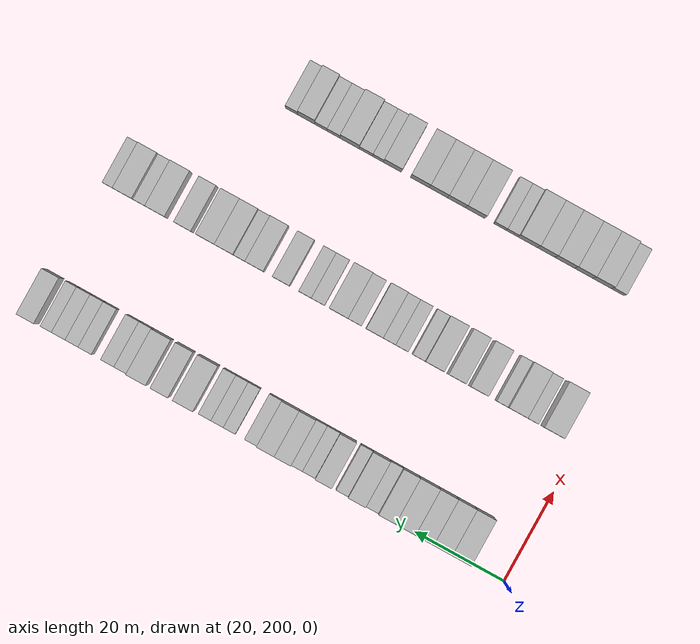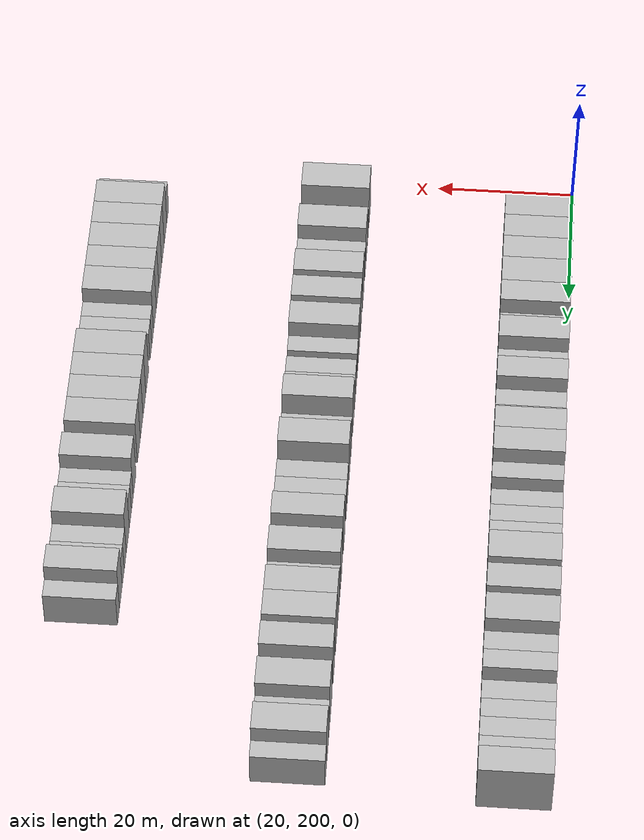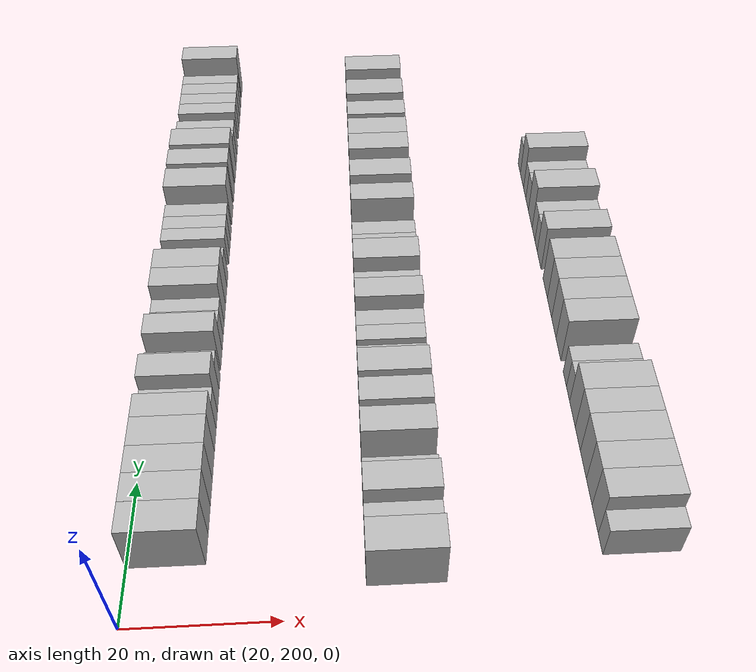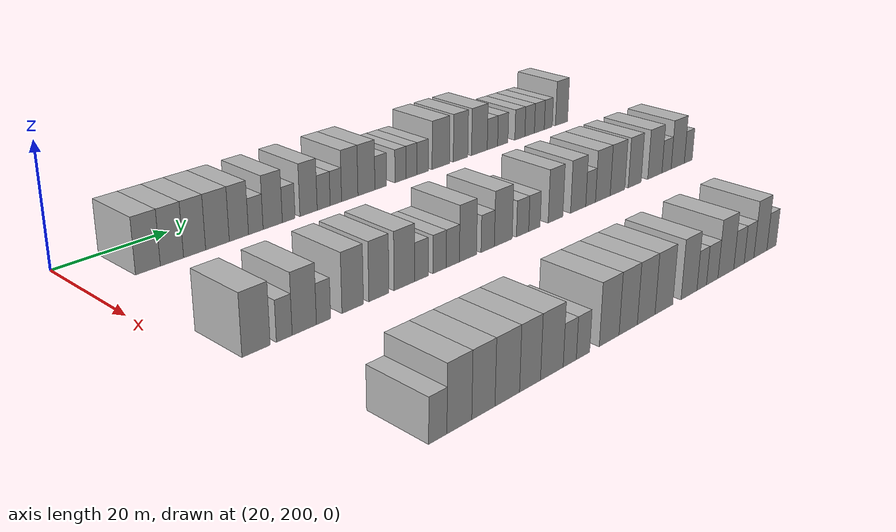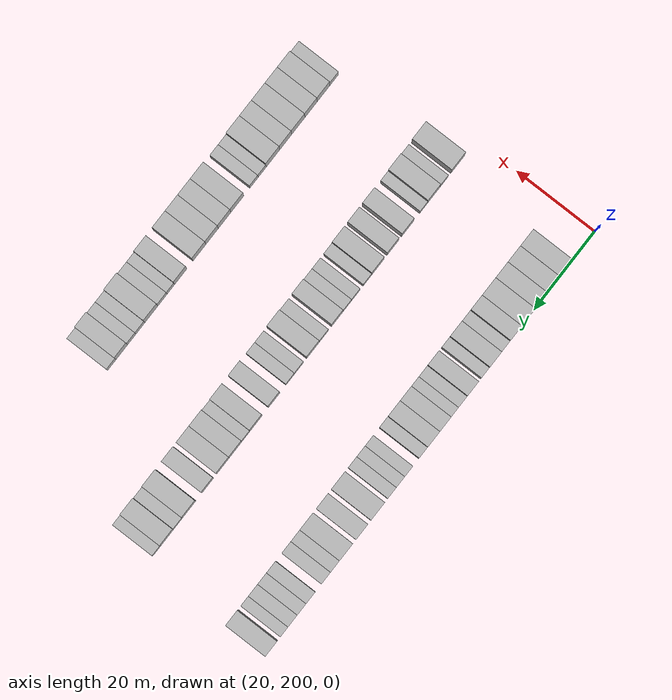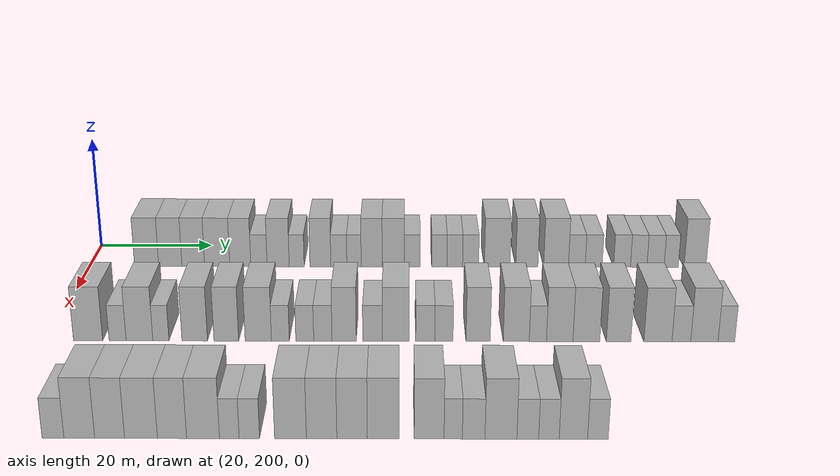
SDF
<sdf version="1.6">
 <world name="default">
  <model name="building_141">
   <static>1</static>
   <pose>25.0000 209.9614 0 0.000000 0.000000 0.000000</pose>
   <link name="link">
    <pose>0 0 4.50 0 0 0</pose>
    <collision name="collision"><geometry><box><size>10.0000 4.2071 9.0000</size></box></geometry></collision>
    <visual name="visual">
     <cast_shadows>0</cast_shadows>
     <geometry><box><size>10.0000 4.2071 9.0000</size></box></geometry>
     <material>
      <script>
       <uri>model://HANNAS_wall/materials/scripts</uri>
       <uri>model://HANNAS_wall/materials/textures</uri>
       <name>vrc/HANNAS_wall</name>
      </script>
     </material>
    </visual>
   </link>
  </model>
  <model name="building_142">
   <static>1</static>
   <pose>25.0000 214.0919 0 0.000000 0.000000 0.000000</pose>
   <link name="link">
    <pose>0 0 4.50 0 0 0</pose>
    <collision name="collision"><geometry><box><size>10.0000 4.0538 9.0000</size></box></geometry></collision>
    <visual name="visual">
     <cast_shadows>0</cast_shadows>
     <geometry><box><size>10.0000 4.0538 9.0000</size></box></geometry>
     <material>
      <script>
       <uri>model://HANNAS_wall/materials/scripts</uri>
       <uri>model://HANNAS_wall/materials/textures</uri>
       <name>vrc/HANNAS_wall</name>
      </script>
     </material>
    </visual>
   </link>
  </model>
  <model name="building_143">
   <static>1</static>
   <pose>25.0000 218.1014 0 0.000000 0.000000 0.000000</pose>
   <link name="link">
    <pose>0 0 4.50 0 0 0</pose>
    <collision name="collision"><geometry><box><size>10.0000 3.9653 9.0000</size></box></geometry></collision>
    <visual name="visual">
     <cast_shadows>0</cast_shadows>
     <geometry><box><size>10.0000 3.9653 9.0000</size></box></geometry>
     <material>
      <script>
       <uri>model://HANNAS_wall/materials/scripts</uri>
       <uri>model://HANNAS_wall/materials/textures</uri>
       <name>vrc/HANNAS_wall</name>
      </script>
     </material>
    </visual>
   </link>
  </model>
  <model name="building_144">
   <static>1</static>
   <pose>25.0000 222.2777 0 0.000000 0.000000 0.000000</pose>
   <link name="link">
    <pose>0 0 4.50 0 0 0</pose>
    <collision name="collision"><geometry><box><size>10.0000 4.3873 9.0000</size></box></geometry></collision>
    <visual name="visual">
     <cast_shadows>0</cast_shadows>
     <geometry><box><size>10.0000 4.3873 9.0000</size></box></geometry>
     <material>
      <script>
       <uri>model://HANNAS_wall/materials/scripts</uri>
       <uri>model://HANNAS_wall/materials/textures</uri>
       <name>vrc/HANNAS_wall</name>
      </script>
     </material>
    </visual>
   </link>
  </model>
  <model name="building_145">
   <static>1</static>
   <pose>25.0000 226.3055 0 0.000000 0.000000 0.000000</pose>
   <link name="link">
    <pose>0 0 4.50 0 0 0</pose>
    <collision name="collision"><geometry><box><size>10.0000 3.6681 9.0000</size></box></geometry></collision>
    <visual name="visual">
     <cast_shadows>0</cast_shadows>
     <geometry><box><size>10.0000 3.6681 9.0000</size></box></geometry>
     <material>
      <script>
       <uri>model://HANNAS_wall/materials/scripts</uri>
       <uri>model://HANNAS_wall/materials/textures</uri>
       <name>vrc/HANNAS_wall</name>
      </script>
     </material>
    </visual>
   </link>
  </model>
  <model name="building_146">
   <static>1</static>
   <pose>25.0000 229.5620 0 0.000000 0.000000 0.000000</pose>
   <link name="link">
    <pose>0 0 3.00 0 0 0</pose>
    <collision name="collision"><geometry><box><size>10.0000 2.8450 6.0000</size></box></geometry></collision>
    <visual name="visual">
     <cast_shadows>0</cast_shadows>
     <geometry><box><size>10.0000 2.8450 6.0000</size></box></geometry>
     <material>
      <script>
       <uri>model://HANNAS_wall/materials/scripts</uri>
       <uri>model://HANNAS_wall/materials/textures</uri>
       <name>vrc/HANNAS_wall</name>
      </script>
     </material>
    </visual>
   </link>
  </model>
  <model name="building_147">
   <static>1</static>
   <pose>25.0000 232.9088 0 0.000000 0.000000 0.000000</pose>
   <link name="link">
    <pose>0 0 4.50 0 0 0</pose>
    <collision name="collision"><geometry><box><size>10.0000 3.8485 9.0000</size></box></geometry></collision>
    <visual name="visual">
     <cast_shadows>0</cast_shadows>
     <geometry><box><size>10.0000 3.8485 9.0000</size></box></geometry>
     <material>
      <script>
       <uri>model://HANNAS_wall/materials/scripts</uri>
       <uri>model://HANNAS_wall/materials/textures</uri>
       <name>vrc/HANNAS_wall</name>
      </script>
     </material>
    </visual>
   </link>
  </model>
  <model name="building_148">
   <static>1</static>
   <pose>25.0000 236.1362 0 0.000000 0.000000 0.000000</pose>
   <link name="link">
    <pose>0 0 3.00 0 0 0</pose>
    <collision name="collision"><geometry><box><size>10.0000 2.6063 6.0000</size></box></geometry></collision>
    <visual name="visual">
     <cast_shadows>0</cast_shadows>
     <geometry><box><size>10.0000 2.6063 6.0000</size></box></geometry>
     <material>
      <script>
       <uri>model://HANNAS_wall/materials/scripts</uri>
       <uri>model://HANNAS_wall/materials/textures</uri>
       <name>vrc/HANNAS_wall</name>
      </script>
     </material>
    </visual>
   </link>
  </model>
  <model name="building_149">
   <static>1</static>
   <pose>25.0000 240.2590 0 0.000000 0.000000 0.000000</pose>
   <link name="link">
    <pose>0 0 4.50 0 0 0</pose>
    <collision name="collision"><geometry><box><size>10.0000 3.6392 9.0000</size></box></geometry></collision>
    <visual name="visual">
     <cast_shadows>0</cast_shadows>
     <geometry><box><size>10.0000 3.6392 9.0000</size></box></geometry>
     <material>
      <script>
       <uri>model://HANNAS_wall/materials/scripts</uri>
       <uri>model://HANNAS_wall/materials/textures</uri>
       <name>vrc/HANNAS_wall</name>
      </script>
     </material>
    </visual>
   </link>
  </model>
  <model name="building_150">
   <static>1</static>
   <pose>25.0000 243.4770 0 0.000000 0.000000 0.000000</pose>
   <link name="link">
    <pose>0 0 3.00 0 0 0</pose>
    <collision name="collision"><geometry><box><size>10.0000 2.7969 6.0000</size></box></geometry></collision>
    <visual name="visual">
     <cast_shadows>0</cast_shadows>
     <geometry><box><size>10.0000 2.7969 6.0000</size></box></geometry>
     <material>
      <script>
       <uri>model://HANNAS_wall/materials/scripts</uri>
       <uri>model://HANNAS_wall/materials/textures</uri>
       <name>vrc/HANNAS_wall</name>
      </script>
     </material>
    </visual>
   </link>
  </model>
  <model name="building_151">
   <static>1</static>
   <pose>25.0000 246.1226 0 0.000000 0.000000 0.000000</pose>
   <link name="link">
    <pose>0 0 3.00 0 0 0</pose>
    <collision name="collision"><geometry><box><size>10.0000 2.4941 6.0000</size></box></geometry></collision>
    <visual name="visual">
     <cast_shadows>0</cast_shadows>
     <geometry><box><size>10.0000 2.4941 6.0000</size></box></geometry>
     <material>
      <script>
       <uri>model://HANNAS_wall/materials/scripts</uri>
       <uri>model://HANNAS_wall/materials/textures</uri>
       <name>vrc/HANNAS_wall</name>
      </script>
     </material>
    </visual>
   </link>
  </model>
  <model name="building_152">
   <static>1</static>
   <pose>25.0000 249.2016 0 0.000000 0.000000 0.000000</pose>
   <link name="link">
    <pose>0 0 4.50 0 0 0</pose>
    <collision name="collision"><geometry><box><size>10.0000 3.6640 9.0000</size></box></geometry></collision>
    <visual name="visual">
     <cast_shadows>0</cast_shadows>
     <geometry><box><size>10.0000 3.6640 9.0000</size></box></geometry>
     <material>
      <script>
       <uri>model://HANNAS_wall/materials/scripts</uri>
       <uri>model://HANNAS_wall/materials/textures</uri>
       <name>vrc/HANNAS_wall</name>
      </script>
     </material>
    </visual>
   </link>
  </model>
  <model name="building_153">
   <static>1</static>
   <pose>25.0000 252.9788 0 0.000000 0.000000 0.000000</pose>
   <link name="link">
    <pose>0 0 4.50 0 0 0</pose>
    <collision name="collision"><geometry><box><size>10.0000 3.8904 9.0000</size></box></geometry></collision>
    <visual name="visual">
     <cast_shadows>0</cast_shadows>
     <geometry><box><size>10.0000 3.8904 9.0000</size></box></geometry>
     <material>
      <script>
       <uri>model://HANNAS_wall/materials/scripts</uri>
       <uri>model://HANNAS_wall/materials/textures</uri>
       <name>vrc/HANNAS_wall</name>
      </script>
     </material>
    </visual>
   </link>
  </model>
  <model name="building_154">
   <static>1</static>
   <pose>25.0000 256.2912 0 0.000000 0.000000 0.000000</pose>
   <link name="link">
    <pose>0 0 3.00 0 0 0</pose>
    <collision name="collision"><geometry><box><size>10.0000 2.7344 6.0000</size></box></geometry></collision>
    <visual name="visual">
     <cast_shadows>0</cast_shadows>
     <geometry><box><size>10.0000 2.7344 6.0000</size></box></geometry>
     <material>
      <script>
       <uri>model://HANNAS_wall/materials/scripts</uri>
       <uri>model://HANNAS_wall/materials/textures</uri>
       <name>vrc/HANNAS_wall</name>
      </script>
     </material>
    </visual>
   </link>
  </model>
  <model name="building_155">
   <static>1</static>
   <pose>25.0000 260.9845 0 0.000000 0.000000 0.000000</pose>
   <link name="link">
    <pose>0 0 3.00 0 0 0</pose>
    <collision name="collision"><geometry><box><size>10.0000 2.6523 6.0000</size></box></geometry></collision>
    <visual name="visual">
     <cast_shadows>0</cast_shadows>
     <geometry><box><size>10.0000 2.6523 6.0000</size></box></geometry>
     <material>
      <script>
       <uri>model://HANNAS_wall/materials/scripts</uri>
       <uri>model://HANNAS_wall/materials/textures</uri>
       <name>vrc/HANNAS_wall</name>
      </script>
     </material>
    </visual>
   </link>
  </model>
  <model name="building_156">
   <static>1</static>
   <pose>25.0000 263.6761 0 0.000000 0.000000 0.000000</pose>
   <link name="link">
    <pose>0 0 3.00 0 0 0</pose>
    <collision name="collision"><geometry><box><size>10.0000 2.7308 6.0000</size></box></geometry></collision>
    <visual name="visual">
     <cast_shadows>0</cast_shadows>
     <geometry><box><size>10.0000 2.7308 6.0000</size></box></geometry>
     <material>
      <script>
       <uri>model://HANNAS_wall/materials/scripts</uri>
       <uri>model://HANNAS_wall/materials/textures</uri>
       <name>vrc/HANNAS_wall</name>
      </script>
     </material>
    </visual>
   </link>
  </model>
  <model name="building_157">
   <static>1</static>
   <pose>25.0000 266.4309 0 0.000000 0.000000 0.000000</pose>
   <link name="link">
    <pose>0 0 3.00 0 0 0</pose>
    <collision name="collision"><geometry><box><size>10.0000 2.7789 6.0000</size></box></geometry></collision>
    <visual name="visual">
     <cast_shadows>0</cast_shadows>
     <geometry><box><size>10.0000 2.7789 6.0000</size></box></geometry>
     <material>
      <script>
       <uri>model://HANNAS_wall/materials/scripts</uri>
       <uri>model://HANNAS_wall/materials/textures</uri>
       <name>vrc/HANNAS_wall</name>
      </script>
     </material>
    </visual>
   </link>
  </model>
  <model name="building_158">
   <static>1</static>
   <pose>25.0000 271.0563 0 0.000000 0.000000 0.000000</pose>
   <link name="link">
    <pose>0 0 4.50 0 0 0</pose>
    <collision name="collision"><geometry><box><size>10.0000 4.4718 9.0000</size></box></geometry></collision>
    <visual name="visual">
     <cast_shadows>0</cast_shadows>
     <geometry><box><size>10.0000 4.4718 9.0000</size></box></geometry>
     <material>
      <script>
       <uri>model://HANNAS_wall/materials/scripts</uri>
       <uri>model://HANNAS_wall/materials/textures</uri>
       <name>vrc/HANNAS_wall</name>
      </script>
     </material>
    </visual>
   </link>
  </model>
  <model name="building_159">
   <static>1</static>
   <pose>25.0000 276.2250 0 0.000000 0.000000 0.000000</pose>
   <link name="link">
    <pose>0 0 4.50 0 0 0</pose>
    <collision name="collision"><geometry><box><size>10.0000 3.8656 9.0000</size></box></geometry></collision>
    <visual name="visual">
     <cast_shadows>0</cast_shadows>
     <geometry><box><size>10.0000 3.8656 9.0000</size></box></geometry>
     <material>
      <script>
       <uri>model://HANNAS_wall/materials/scripts</uri>
       <uri>model://HANNAS_wall/materials/textures</uri>
       <name>vrc/HANNAS_wall</name>
      </script>
     </material>
    </visual>
   </link>
  </model>
  <model name="building_160">
   <static>1</static>
   <pose>25.0000 281.3155 0 0.000000 0.000000 0.000000</pose>
   <link name="link">
    <pose>0 0 4.50 0 0 0</pose>
    <collision name="collision"><geometry><box><size>10.0000 4.3152 9.0000</size></box></geometry></collision>
    <visual name="visual">
     <cast_shadows>0</cast_shadows>
     <geometry><box><size>10.0000 4.3152 9.0000</size></box></geometry>
     <material>
      <script>
       <uri>model://HANNAS_wall/materials/scripts</uri>
       <uri>model://HANNAS_wall/materials/textures</uri>
       <name>vrc/HANNAS_wall</name>
      </script>
     </material>
    </visual>
   </link>
  </model>
  <model name="building_161">
   <static>1</static>
   <pose>25.0000 284.9290 0 0.000000 0.000000 0.000000</pose>
   <link name="link">
    <pose>0 0 3.00 0 0 0</pose>
    <collision name="collision"><geometry><box><size>10.0000 2.9118 6.0000</size></box></geometry></collision>
    <visual name="visual">
     <cast_shadows>0</cast_shadows>
     <geometry><box><size>10.0000 2.9118 6.0000</size></box></geometry>
     <material>
      <script>
       <uri>model://HANNAS_wall/materials/scripts</uri>
       <uri>model://HANNAS_wall/materials/textures</uri>
       <name>vrc/HANNAS_wall</name>
      </script>
     </material>
    </visual>
   </link>
  </model>
  <model name="building_162">
   <static>1</static>
   <pose>25.0000 287.8571 0 0.000000 0.000000 0.000000</pose>
   <link name="link">
    <pose>0 0 3.00 0 0 0</pose>
    <collision name="collision"><geometry><box><size>10.0000 2.9444 6.0000</size></box></geometry></collision>
    <visual name="visual">
     <cast_shadows>0</cast_shadows>
     <geometry><box><size>10.0000 2.9444 6.0000</size></box></geometry>
     <material>
      <script>
       <uri>model://HANNAS_wall/materials/scripts</uri>
       <uri>model://HANNAS_wall/materials/textures</uri>
       <name>vrc/HANNAS_wall</name>
      </script>
     </material>
    </visual>
   </link>
  </model>
  <model name="building_163">
   <static>1</static>
   <pose>25.0000 292.7997 0 0.000000 0.000000 0.000000</pose>
   <link name="link">
    <pose>0 0 3.00 0 0 0</pose>
    <collision name="collision"><geometry><box><size>10.0000 2.9407 6.0000</size></box></geometry></collision>
    <visual name="visual">
     <cast_shadows>0</cast_shadows>
     <geometry><box><size>10.0000 2.9407 6.0000</size></box></geometry>
     <material>
      <script>
       <uri>model://HANNAS_wall/materials/scripts</uri>
       <uri>model://HANNAS_wall/materials/textures</uri>
       <name>vrc/HANNAS_wall</name>
      </script>
     </material>
    </visual>
   </link>
  </model>
  <model name="building_164">
   <static>1</static>
   <pose>25.0000 295.6994 0 0.000000 0.000000 0.000000</pose>
   <link name="link">
    <pose>0 0 3.00 0 0 0</pose>
    <collision name="collision"><geometry><box><size>10.0000 2.8587 6.0000</size></box></geometry></collision>
    <visual name="visual">
     <cast_shadows>0</cast_shadows>
     <geometry><box><size>10.0000 2.8587 6.0000</size></box></geometry>
     <material>
      <script>
       <uri>model://HANNAS_wall/materials/scripts</uri>
       <uri>model://HANNAS_wall/materials/textures</uri>
       <name>vrc/HANNAS_wall</name>
      </script>
     </material>
    </visual>
   </link>
  </model>
  <model name="building_165">
   <static>1</static>
   <pose>25.0000 298.6269 0 0.000000 0.000000 0.000000</pose>
   <link name="link">
    <pose>0 0 3.00 0 0 0</pose>
    <collision name="collision"><geometry><box><size>10.0000 2.9963 6.0000</size></box></geometry></collision>
    <visual name="visual">
     <cast_shadows>0</cast_shadows>
     <geometry><box><size>10.0000 2.9963 6.0000</size></box></geometry>
     <material>
      <script>
       <uri>model://HANNAS_wall/materials/scripts</uri>
       <uri>model://HANNAS_wall/materials/textures</uri>
       <name>vrc/HANNAS_wall</name>
      </script>
     </material>
    </visual>
   </link>
  </model>
  <model name="building_166">
   <static>1</static>
   <pose>25.0000 301.3585 0 0.000000 0.000000 0.000000</pose>
   <link name="link">
    <pose>0 0 3.00 0 0 0</pose>
    <collision name="collision"><geometry><box><size>10.0000 2.4670 6.0000</size></box></geometry></collision>
    <visual name="visual">
     <cast_shadows>0</cast_shadows>
     <geometry><box><size>10.0000 2.4670 6.0000</size></box></geometry>
     <material>
      <script>
       <uri>model://HANNAS_wall/materials/scripts</uri>
       <uri>model://HANNAS_wall/materials/textures</uri>
       <name>vrc/HANNAS_wall</name>
      </script>
     </material>
    </visual>
   </link>
  </model>
  <model name="building_167">
   <static>1</static>
   <pose>25.0000 305.5046 0 0.000000 0.000000 0.000000</pose>
   <link name="link">
    <pose>0 0 4.50 0 0 0</pose>
    <collision name="collision"><geometry><box><size>10.0000 3.8250 9.0000</size></box></geometry></collision>
    <visual name="visual">
     <cast_shadows>0</cast_shadows>
     <geometry><box><size>10.0000 3.8250 9.0000</size></box></geometry>
     <material>
      <script>
       <uri>model://HANNAS_wall/materials/scripts</uri>
       <uri>model://HANNAS_wall/materials/textures</uri>
       <name>vrc/HANNAS_wall</name>
      </script>
     </material>
    </visual>
   </link>
  </model>
  <model name="building_372">
   <static>1</static>
   <pose>55.0000 206.2526 0 0.000000 0.000000 0.000000</pose>
   <link name="link">
    <pose>0 0 4.50 0 0 0</pose>
    <collision name="collision"><geometry><box><size>10.0000 4.4772 9.0000</size></box></geometry></collision>
    <visual name="visual">
     <cast_shadows>0</cast_shadows>
     <geometry><box><size>10.0000 4.4772 9.0000</size></box></geometry>
     <material>
      <script>
       <uri>model://HANNAS_wall/materials/scripts</uri>
       <uri>model://HANNAS_wall/materials/textures</uri>
       <name>vrc/HANNAS_wall</name>
      </script>
     </material>
    </visual>
   </link>
  </model>
  <model name="building_373">
   <static>1</static>
   <pose>55.0000 210.7950 0 0.000000 0.000000 0.000000</pose>
   <link name="link">
    <pose>0 0 3.00 0 0 0</pose>
    <collision name="collision"><geometry><box><size>10.0000 2.6076 6.0000</size></box></geometry></collision>
    <visual name="visual">
     <cast_shadows>0</cast_shadows>
     <geometry><box><size>10.0000 2.6076 6.0000</size></box></geometry>
     <material>
      <script>
       <uri>model://HANNAS_wall/materials/scripts</uri>
       <uri>model://HANNAS_wall/materials/textures</uri>
       <name>vrc/HANNAS_wall</name>
      </script>
     </material>
    </visual>
   </link>
  </model>
  <model name="building_374">
   <static>1</static>
   <pose>55.0000 214.1557 0 0.000000 0.000000 0.000000</pose>
   <link name="link">
    <pose>0 0 4.50 0 0 0</pose>
    <collision name="collision"><geometry><box><size>10.0000 4.1138 9.0000</size></box></geometry></collision>
    <visual name="visual">
     <cast_shadows>0</cast_shadows>
     <geometry><box><size>10.0000 4.1138 9.0000</size></box></geometry>
     <material>
      <script>
       <uri>model://HANNAS_wall/materials/scripts</uri>
       <uri>model://HANNAS_wall/materials/textures</uri>
       <name>vrc/HANNAS_wall</name>
      </script>
     </material>
    </visual>
   </link>
  </model>
  <model name="building_375">
   <static>1</static>
   <pose>55.0000 217.4530 0 0.000000 0.000000 0.000000</pose>
   <link name="link">
    <pose>0 0 3.00 0 0 0</pose>
    <collision name="collision"><geometry><box><size>10.0000 2.4809 6.0000</size></box></geometry></collision>
    <visual name="visual">
     <cast_shadows>0</cast_shadows>
     <geometry><box><size>10.0000 2.4809 6.0000</size></box></geometry>
     <material>
      <script>
       <uri>model://HANNAS_wall/materials/scripts</uri>
       <uri>model://HANNAS_wall/materials/textures</uri>
       <name>vrc/HANNAS_wall</name>
      </script>
     </material>
    </visual>
   </link>
  </model>
  <model name="building_376">
   <static>1</static>
   <pose>55.0000 222.6532 0 0.000000 0.000000 0.000000</pose>
   <link name="link">
    <pose>0 0 4.50 0 0 0</pose>
    <collision name="collision"><geometry><box><size>10.0000 3.9195 9.0000</size></box></geometry></collision>
    <visual name="visual">
     <cast_shadows>0</cast_shadows>
     <geometry><box><size>10.0000 3.9195 9.0000</size></box></geometry>
     <material>
      <script>
       <uri>model://HANNAS_wall/materials/scripts</uri>
       <uri>model://HANNAS_wall/materials/textures</uri>
       <name>vrc/HANNAS_wall</name>
      </script>
     </material>
    </visual>
   </link>
  </model>
  <model name="building_377">
   <static>1</static>
   <pose>55.0000 227.5112 0 0.000000 0.000000 0.000000</pose>
   <link name="link">
    <pose>0 0 4.50 0 0 0</pose>
    <collision name="collision"><geometry><box><size>10.0000 3.7964 9.0000</size></box></geometry></collision>
    <visual name="visual">
     <cast_shadows>0</cast_shadows>
     <geometry><box><size>10.0000 3.7964 9.0000</size></box></geometry>
     <material>
      <script>
       <uri>model://HANNAS_wall/materials/scripts</uri>
       <uri>model://HANNAS_wall/materials/textures</uri>
       <name>vrc/HANNAS_wall</name>
      </script>
     </material>
    </visual>
   </link>
  </model>
  <model name="building_378">
   <static>1</static>
   <pose>55.0000 232.4296 0 0.000000 0.000000 0.000000</pose>
   <link name="link">
    <pose>0 0 4.50 0 0 0</pose>
    <collision name="collision"><geometry><box><size>10.0000 4.0404 9.0000</size></box></geometry></collision>
    <visual name="visual">
     <cast_shadows>0</cast_shadows>
     <geometry><box><size>10.0000 4.0404 9.0000</size></box></geometry>
     <material>
      <script>
       <uri>model://HANNAS_wall/materials/scripts</uri>
       <uri>model://HANNAS_wall/materials/textures</uri>
       <name>vrc/HANNAS_wall</name>
      </script>
     </material>
    </visual>
   </link>
  </model>
  <model name="building_379">
   <static>1</static>
   <pose>55.0000 235.8215 0 0.000000 0.000000 0.000000</pose>
   <link name="link">
    <pose>0 0 3.00 0 0 0</pose>
    <collision name="collision"><geometry><box><size>10.0000 2.7434 6.0000</size></box></geometry></collision>
    <visual name="visual">
     <cast_shadows>0</cast_shadows>
     <geometry><box><size>10.0000 2.7434 6.0000</size></box></geometry>
     <material>
      <script>
       <uri>model://HANNAS_wall/materials/scripts</uri>
       <uri>model://HANNAS_wall/materials/textures</uri>
       <name>vrc/HANNAS_wall</name>
      </script>
     </material>
    </visual>
   </link>
  </model>
  <model name="building_380">
   <static>1</static>
   <pose>55.0000 239.5719 0 0.000000 0.000000 0.000000</pose>
   <link name="link">
    <pose>0 0 3.00 0 0 0</pose>
    <collision name="collision"><geometry><box><size>10.0000 2.7574 6.0000</size></box></geometry></collision>
    <visual name="visual">
     <cast_shadows>0</cast_shadows>
     <geometry><box><size>10.0000 2.7574 6.0000</size></box></geometry>
     <material>
      <script>
       <uri>model://HANNAS_wall/materials/scripts</uri>
       <uri>model://HANNAS_wall/materials/textures</uri>
       <name>vrc/HANNAS_wall</name>
      </script>
     </material>
    </visual>
   </link>
  </model>
  <model name="building_381">
   <static>1</static>
   <pose>55.0000 242.3495 0 0.000000 0.000000 0.000000</pose>
   <link name="link">
    <pose>0 0 3.00 0 0 0</pose>
    <collision name="collision"><geometry><box><size>10.0000 2.7978 6.0000</size></box></geometry></collision>
    <visual name="visual">
     <cast_shadows>0</cast_shadows>
     <geometry><box><size>10.0000 2.7978 6.0000</size></box></geometry>
     <material>
      <script>
       <uri>model://HANNAS_wall/materials/scripts</uri>
       <uri>model://HANNAS_wall/materials/textures</uri>
       <name>vrc/HANNAS_wall</name>
      </script>
     </material>
    </visual>
   </link>
  </model>
  <model name="building_382">
   <static>1</static>
   <pose>55.0000 245.6145 0 0.000000 0.000000 0.000000</pose>
   <link name="link">
    <pose>0 0 4.50 0 0 0</pose>
    <collision name="collision"><geometry><box><size>10.0000 3.7324 9.0000</size></box></geometry></collision>
    <visual name="visual">
     <cast_shadows>0</cast_shadows>
     <geometry><box><size>10.0000 3.7324 9.0000</size></box></geometry>
     <material>
      <script>
       <uri>model://HANNAS_wall/materials/scripts</uri>
       <uri>model://HANNAS_wall/materials/textures</uri>
       <name>vrc/HANNAS_wall</name>
      </script>
     </material>
    </visual>
   </link>
  </model>
  <model name="building_383">
   <static>1</static>
   <pose>55.0000 249.9787 0 0.000000 0.000000 0.000000</pose>
   <link name="link">
    <pose>0 0 3.00 0 0 0</pose>
    <collision name="collision"><geometry><box><size>10.0000 2.9959 6.0000</size></box></geometry></collision>
    <visual name="visual">
     <cast_shadows>0</cast_shadows>
     <geometry><box><size>10.0000 2.9959 6.0000</size></box></geometry>
     <material>
      <script>
       <uri>model://HANNAS_wall/materials/scripts</uri>
       <uri>model://HANNAS_wall/materials/textures</uri>
       <name>vrc/HANNAS_wall</name>
      </script>
     </material>
    </visual>
   </link>
  </model>
  <model name="building_384">
   <static>1</static>
   <pose>55.0000 253.5428 0 0.000000 0.000000 0.000000</pose>
   <link name="link">
    <pose>0 0 4.50 0 0 0</pose>
    <collision name="collision"><geometry><box><size>10.0000 4.1324 9.0000</size></box></geometry></collision>
    <visual name="visual">
     <cast_shadows>0</cast_shadows>
     <geometry><box><size>10.0000 4.1324 9.0000</size></box></geometry>
     <material>
      <script>
       <uri>model://HANNAS_wall/materials/scripts</uri>
       <uri>model://HANNAS_wall/materials/textures</uri>
       <name>vrc/HANNAS_wall</name>
      </script>
     </material>
    </visual>
   </link>
  </model>
  <model name="building_385">
   <static>1</static>
   <pose>55.0000 258.0759 0 0.000000 0.000000 0.000000</pose>
   <link name="link">
    <pose>0 0 3.00 0 0 0</pose>
    <collision name="collision"><geometry><box><size>10.0000 2.9338 6.0000</size></box></geometry></collision>
    <visual name="visual">
     <cast_shadows>0</cast_shadows>
     <geometry><box><size>10.0000 2.9338 6.0000</size></box></geometry>
     <material>
      <script>
       <uri>model://HANNAS_wall/materials/scripts</uri>
       <uri>model://HANNAS_wall/materials/textures</uri>
       <name>vrc/HANNAS_wall</name>
      </script>
     </material>
    </visual>
   </link>
  </model>
  <model name="building_386">
   <static>1</static>
   <pose>55.0000 260.9384 0 0.000000 0.000000 0.000000</pose>
   <link name="link">
    <pose>0 0 3.00 0 0 0</pose>
    <collision name="collision"><geometry><box><size>10.0000 2.7911 6.0000</size></box></geometry></collision>
    <visual name="visual">
     <cast_shadows>0</cast_shadows>
     <geometry><box><size>10.0000 2.7911 6.0000</size></box></geometry>
     <material>
      <script>
       <uri>model://HANNAS_wall/materials/scripts</uri>
       <uri>model://HANNAS_wall/materials/textures</uri>
       <name>vrc/HANNAS_wall</name>
      </script>
     </material>
    </visual>
   </link>
  </model>
  <model name="building_387">
   <static>1</static>
   <pose>55.0000 266.1903 0 0.000000 0.000000 0.000000</pose>
   <link name="link">
    <pose>0 0 4.50 0 0 0</pose>
    <collision name="collision"><geometry><box><size>10.0000 3.7127 9.0000</size></box></geometry></collision>
    <visual name="visual">
     <cast_shadows>0</cast_shadows>
     <geometry><box><size>10.0000 3.7127 9.0000</size></box></geometry>
     <material>
      <script>
       <uri>model://HANNAS_wall/materials/scripts</uri>
       <uri>model://HANNAS_wall/materials/textures</uri>
       <name>vrc/HANNAS_wall</name>
      </script>
     </material>
    </visual>
   </link>
  </model>
  <model name="building_388">
   <static>1</static>
   <pose>55.0000 272.0442 0 0.000000 0.000000 0.000000</pose>
   <link name="link">
    <pose>0 0 4.50 0 0 0</pose>
    <collision name="collision"><geometry><box><size>10.0000 3.9951 9.0000</size></box></geometry></collision>
    <visual name="visual">
     <cast_shadows>0</cast_shadows>
     <geometry><box><size>10.0000 3.9951 9.0000</size></box></geometry>
     <material>
      <script>
       <uri>model://HANNAS_wall/materials/scripts</uri>
       <uri>model://HANNAS_wall/materials/textures</uri>
       <name>vrc/HANNAS_wall</name>
      </script>
     </material>
    </visual>
   </link>
  </model>
  <model name="building_389">
   <static>1</static>
   <pose>55.0000 275.3600 0 0.000000 0.000000 0.000000</pose>
   <link name="link">
    <pose>0 0 3.00 0 0 0</pose>
    <collision name="collision"><geometry><box><size>10.0000 2.6364 6.0000</size></box></geometry></collision>
    <visual name="visual">
     <cast_shadows>0</cast_shadows>
     <geometry><box><size>10.0000 2.6364 6.0000</size></box></geometry>
     <material>
      <script>
       <uri>model://HANNAS_wall/materials/scripts</uri>
       <uri>model://HANNAS_wall/materials/textures</uri>
       <name>vrc/HANNAS_wall</name>
      </script>
     </material>
    </visual>
   </link>
  </model>
  <model name="building_390">
   <static>1</static>
   <pose>55.0000 278.7078 0 0.000000 0.000000 0.000000</pose>
   <link name="link">
    <pose>0 0 4.50 0 0 0</pose>
    <collision name="collision"><geometry><box><size>10.0000 4.0592 9.0000</size></box></geometry></collision>
    <visual name="visual">
     <cast_shadows>0</cast_shadows>
     <geometry><box><size>10.0000 4.0592 9.0000</size></box></geometry>
     <material>
      <script>
       <uri>model://HANNAS_wall/materials/scripts</uri>
       <uri>model://HANNAS_wall/materials/textures</uri>
       <name>vrc/HANNAS_wall</name>
      </script>
     </material>
    </visual>
   </link>
  </model>
  <model name="building_391">
   <static>1</static>
   <pose>55.0000 282.8022 0 0.000000 0.000000 0.000000</pose>
   <link name="link">
    <pose>0 0 4.50 0 0 0</pose>
    <collision name="collision"><geometry><box><size>10.0000 4.1297 9.0000</size></box></geometry></collision>
    <visual name="visual">
     <cast_shadows>0</cast_shadows>
     <geometry><box><size>10.0000 4.1297 9.0000</size></box></geometry>
     <material>
      <script>
       <uri>model://HANNAS_wall/materials/scripts</uri>
       <uri>model://HANNAS_wall/materials/textures</uri>
       <name>vrc/HANNAS_wall</name>
      </script>
     </material>
    </visual>
   </link>
  </model>
  <model name="building_392">
   <static>1</static>
   <pose>55.0000 287.7470 0 0.000000 0.000000 0.000000</pose>
   <link name="link">
    <pose>0 0 4.50 0 0 0</pose>
    <collision name="collision"><geometry><box><size>10.0000 3.7598 9.0000</size></box></geometry></collision>
    <visual name="visual">
     <cast_shadows>0</cast_shadows>
     <geometry><box><size>10.0000 3.7598 9.0000</size></box></geometry>
     <material>
      <script>
       <uri>model://HANNAS_wall/materials/scripts</uri>
       <uri>model://HANNAS_wall/materials/textures</uri>
       <name>vrc/HANNAS_wall</name>
      </script>
     </material>
    </visual>
   </link>
  </model>
  <model name="building_393">
   <static>1</static>
   <pose>55.0000 293.7833 0 0.000000 0.000000 0.000000</pose>
   <link name="link">
    <pose>0 0 4.50 0 0 0</pose>
    <collision name="collision"><geometry><box><size>10.0000 4.3128 9.0000</size></box></geometry></collision>
    <visual name="visual">
     <cast_shadows>0</cast_shadows>
     <geometry><box><size>10.0000 4.3128 9.0000</size></box></geometry>
     <material>
      <script>
       <uri>model://HANNAS_wall/materials/scripts</uri>
       <uri>model://HANNAS_wall/materials/textures</uri>
       <name>vrc/HANNAS_wall</name>
      </script>
     </material>
    </visual>
   </link>
  </model>
  <model name="building_394">
   <static>1</static>
   <pose>55.0000 297.3757 0 0.000000 0.000000 0.000000</pose>
   <link name="link">
    <pose>0 0 3.00 0 0 0</pose>
    <collision name="collision"><geometry><box><size>10.0000 2.8718 6.0000</size></box></geometry></collision>
    <visual name="visual">
     <cast_shadows>0</cast_shadows>
     <geometry><box><size>10.0000 2.8718 6.0000</size></box></geometry>
     <material>
      <script>
       <uri>model://HANNAS_wall/materials/scripts</uri>
       <uri>model://HANNAS_wall/materials/textures</uri>
       <name>vrc/HANNAS_wall</name>
      </script>
     </material>
    </visual>
   </link>
  </model>
  <model name="building_395">
   <static>1</static>
   <pose>55.0000 300.9097 0 0.000000 0.000000 0.000000</pose>
   <link name="link">
    <pose>0 0 4.50 0 0 0</pose>
    <collision name="collision"><geometry><box><size>10.0000 4.1962 9.0000</size></box></geometry></collision>
    <visual name="visual">
     <cast_shadows>0</cast_shadows>
     <geometry><box><size>10.0000 4.1962 9.0000</size></box></geometry>
     <material>
      <script>
       <uri>model://HANNAS_wall/materials/scripts</uri>
       <uri>model://HANNAS_wall/materials/textures</uri>
       <name>vrc/HANNAS_wall</name>
      </script>
     </material>
    </visual>
   </link>
  </model>
  <model name="building_396">
   <static>1</static>
   <pose>55.0000 304.2855 0 0.000000 0.000000 0.000000</pose>
   <link name="link">
    <pose>0 0 3.00 0 0 0</pose>
    <collision name="collision"><geometry><box><size>10.0000 2.5554 6.0000</size></box></geometry></collision>
    <visual name="visual">
     <cast_shadows>0</cast_shadows>
     <geometry><box><size>10.0000 2.5554 6.0000</size></box></geometry>
     <material>
      <script>
       <uri>model://HANNAS_wall/materials/scripts</uri>
       <uri>model://HANNAS_wall/materials/textures</uri>
       <name>vrc/HANNAS_wall</name>
      </script>
     </material>
    </visual>
   </link>
  </model>
  <model name="building_589">
   <static>1</static>
   <pose>85.0000 208.1000 0 0.000000 0.000000 0.000000</pose>
   <link name="link">
    <pose>0 0 3.00 0 0 0</pose>
    <collision name="collision"><geometry><box><size>10.0000 2.9062 6.0000</size></box></geometry></collision>
    <visual name="visual">
     <cast_shadows>0</cast_shadows>
     <geometry><box><size>10.0000 2.9062 6.0000</size></box></geometry>
     <material>
      <script>
       <uri>model://HANNAS_wall/materials/scripts</uri>
       <uri>model://HANNAS_wall/materials/textures</uri>
       <name>vrc/HANNAS_wall</name>
      </script>
     </material>
    </visual>
   </link>
  </model>
  <model name="building_590">
   <static>1</static>
   <pose>85.0000 211.5996 0 0.000000 0.000000 0.000000</pose>
   <link name="link">
    <pose>0 0 4.50 0 0 0</pose>
    <collision name="collision"><geometry><box><size>10.0000 4.0930 9.0000</size></box></geometry></collision>
    <visual name="visual">
     <cast_shadows>0</cast_shadows>
     <geometry><box><size>10.0000 4.0930 9.0000</size></box></geometry>
     <material>
      <script>
       <uri>model://HANNAS_wall/materials/scripts</uri>
       <uri>model://HANNAS_wall/materials/textures</uri>
       <name>vrc/HANNAS_wall</name>
      </script>
     </material>
    </visual>
   </link>
  </model>
  <model name="building_591">
   <static>1</static>
   <pose>85.0000 215.6338 0 0.000000 0.000000 0.000000</pose>
   <link name="link">
    <pose>0 0 4.50 0 0 0</pose>
    <collision name="collision"><geometry><box><size>10.0000 3.9752 9.0000</size></box></geometry></collision>
    <visual name="visual">
     <cast_shadows>0</cast_shadows>
     <geometry><box><size>10.0000 3.9752 9.0000</size></box></geometry>
     <material>
      <script>
       <uri>model://HANNAS_wall/materials/scripts</uri>
       <uri>model://HANNAS_wall/materials/textures</uri>
       <name>vrc/HANNAS_wall</name>
      </script>
     </material>
    </visual>
   </link>
  </model>
  <model name="building_592">
   <static>1</static>
   <pose>85.0000 219.8121 0 0.000000 0.000000 0.000000</pose>
   <link name="link">
    <pose>0 0 4.50 0 0 0</pose>
    <collision name="collision"><geometry><box><size>10.0000 4.3815 9.0000</size></box></geometry></collision>
    <visual name="visual">
     <cast_shadows>0</cast_shadows>
     <geometry><box><size>10.0000 4.3815 9.0000</size></box></geometry>
     <material>
      <script>
       <uri>model://HANNAS_wall/materials/scripts</uri>
       <uri>model://HANNAS_wall/materials/textures</uri>
       <name>vrc/HANNAS_wall</name>
      </script>
     </material>
    </visual>
   </link>
  </model>
  <model name="building_593">
   <static>1</static>
   <pose>85.0000 223.9450 0 0.000000 0.000000 0.000000</pose>
   <link name="link">
    <pose>0 0 4.50 0 0 0</pose>
    <collision name="collision"><geometry><box><size>10.0000 3.8842 9.0000</size></box></geometry></collision>
    <visual name="visual">
     <cast_shadows>0</cast_shadows>
     <geometry><box><size>10.0000 3.8842 9.0000</size></box></geometry>
     <material>
      <script>
       <uri>model://HANNAS_wall/materials/scripts</uri>
       <uri>model://HANNAS_wall/materials/textures</uri>
       <name>vrc/HANNAS_wall</name>
      </script>
     </material>
    </visual>
   </link>
  </model>
  <model name="building_594">
   <static>1</static>
   <pose>85.0000 228.0715 0 0.000000 0.000000 0.000000</pose>
   <link name="link">
    <pose>0 0 4.50 0 0 0</pose>
    <collision name="collision"><geometry><box><size>10.0000 4.3687 9.0000</size></box></geometry></collision>
    <visual name="visual">
     <cast_shadows>0</cast_shadows>
     <geometry><box><size>10.0000 4.3687 9.0000</size></box></geometry>
     <material>
      <script>
       <uri>model://HANNAS_wall/materials/scripts</uri>
       <uri>model://HANNAS_wall/materials/textures</uri>
       <name>vrc/HANNAS_wall</name>
      </script>
     </material>
    </visual>
   </link>
  </model>
  <model name="building_595">
   <static>1</static>
   <pose>85.0000 231.5633 0 0.000000 0.000000 0.000000</pose>
   <link name="link">
    <pose>0 0 3.00 0 0 0</pose>
    <collision name="collision"><geometry><box><size>10.0000 2.6149 6.0000</size></box></geometry></collision>
    <visual name="visual">
     <cast_shadows>0</cast_shadows>
     <geometry><box><size>10.0000 2.6149 6.0000</size></box></geometry>
     <material>
      <script>
       <uri>model://HANNAS_wall/materials/scripts</uri>
       <uri>model://HANNAS_wall/materials/textures</uri>
       <name>vrc/HANNAS_wall</name>
      </script>
     </material>
    </visual>
   </link>
  </model>
  <model name="building_596">
   <static>1</static>
   <pose>85.0000 234.2291 0 0.000000 0.000000 0.000000</pose>
   <link name="link">
    <pose>0 0 3.00 0 0 0</pose>
    <collision name="collision"><geometry><box><size>10.0000 2.7166 6.0000</size></box></geometry></collision>
    <visual name="visual">
     <cast_shadows>0</cast_shadows>
     <geometry><box><size>10.0000 2.7166 6.0000</size></box></geometry>
     <material>
      <script>
       <uri>model://HANNAS_wall/materials/scripts</uri>
       <uri>model://HANNAS_wall/materials/textures</uri>
       <name>vrc/HANNAS_wall</name>
      </script>
     </material>
    </visual>
   </link>
  </model>
  <model name="building_597">
   <static>1</static>
   <pose>85.0000 239.7015 0 0.000000 0.000000 0.000000</pose>
   <link name="link">
    <pose>0 0 4.50 0 0 0</pose>
    <collision name="collision"><geometry><box><size>10.0000 4.2283 9.0000</size></box></geometry></collision>
    <visual name="visual">
     <cast_shadows>0</cast_shadows>
     <geometry><box><size>10.0000 4.2283 9.0000</size></box></geometry>
     <material>
      <script>
       <uri>model://HANNAS_wall/materials/scripts</uri>
       <uri>model://HANNAS_wall/materials/textures</uri>
       <name>vrc/HANNAS_wall</name>
      </script>
     </material>
    </visual>
   </link>
  </model>
  <model name="building_598">
   <static>1</static>
   <pose>85.0000 243.8387 0 0.000000 0.000000 0.000000</pose>
   <link name="link">
    <pose>0 0 4.50 0 0 0</pose>
    <collision name="collision"><geometry><box><size>10.0000 4.0460 9.0000</size></box></geometry></collision>
    <visual name="visual">
     <cast_shadows>0</cast_shadows>
     <geometry><box><size>10.0000 4.0460 9.0000</size></box></geometry>
     <material>
      <script>
       <uri>model://HANNAS_wall/materials/scripts</uri>
       <uri>model://HANNAS_wall/materials/textures</uri>
       <name>vrc/HANNAS_wall</name>
      </script>
     </material>
    </visual>
   </link>
  </model>
  <model name="building_599">
   <static>1</static>
   <pose>85.0000 247.8856 0 0.000000 0.000000 0.000000</pose>
   <link name="link">
    <pose>0 0 4.50 0 0 0</pose>
    <collision name="collision"><geometry><box><size>10.0000 4.0477 9.0000</size></box></geometry></collision>
    <visual name="visual">
     <cast_shadows>0</cast_shadows>
     <geometry><box><size>10.0000 4.0477 9.0000</size></box></geometry>
     <material>
      <script>
       <uri>model://HANNAS_wall/materials/scripts</uri>
       <uri>model://HANNAS_wall/materials/textures</uri>
       <name>vrc/HANNAS_wall</name>
      </script>
     </material>
    </visual>
   </link>
  </model>
  <model name="building_600">
   <static>1</static>
   <pose>85.0000 252.0213 0 0.000000 0.000000 0.000000</pose>
   <link name="link">
    <pose>0 0 4.50 0 0 0</pose>
    <collision name="collision"><geometry><box><size>10.0000 4.2237 9.0000</size></box></geometry></collision>
    <visual name="visual">
     <cast_shadows>0</cast_shadows>
     <geometry><box><size>10.0000 4.2237 9.0000</size></box></geometry>
     <material>
      <script>
       <uri>model://HANNAS_wall/materials/scripts</uri>
       <uri>model://HANNAS_wall/materials/textures</uri>
       <name>vrc/HANNAS_wall</name>
      </script>
     </material>
    </visual>
   </link>
  </model>
  <model name="building_601">
   <static>1</static>
   <pose>85.0000 258.1188 0 0.000000 0.000000 0.000000</pose>
   <link name="link">
    <pose>0 0 4.50 0 0 0</pose>
    <collision name="collision"><geometry><box><size>10.0000 3.9712 9.0000</size></box></geometry></collision>
    <visual name="visual">
     <cast_shadows>0</cast_shadows>
     <geometry><box><size>10.0000 3.9712 9.0000</size></box></geometry>
     <material>
      <script>
       <uri>model://HANNAS_wall/materials/scripts</uri>
       <uri>model://HANNAS_wall/materials/textures</uri>
       <name>vrc/HANNAS_wall</name>
      </script>
     </material>
    </visual>
   </link>
  </model>
  <model name="building_602">
   <static>1</static>
   <pose>85.0000 261.3240 0 0.000000 0.000000 0.000000</pose>
   <link name="link">
    <pose>0 0 3.00 0 0 0</pose>
    <collision name="collision"><geometry><box><size>10.0000 2.4391 6.0000</size></box></geometry></collision>
    <visual name="visual">
     <cast_shadows>0</cast_shadows>
     <geometry><box><size>10.0000 2.4391 6.0000</size></box></geometry>
     <material>
      <script>
       <uri>model://HANNAS_wall/materials/scripts</uri>
       <uri>model://HANNAS_wall/materials/textures</uri>
       <name>vrc/HANNAS_wall</name>
      </script>
     </material>
    </visual>
   </link>
  </model>
  <model name="building_603">
   <static>1</static>
   <pose>85.0000 264.0432 0 0.000000 0.000000 0.000000</pose>
   <link name="link">
    <pose>0 0 3.00 0 0 0</pose>
    <collision name="collision"><geometry><box><size>10.0000 2.9994 6.0000</size></box></geometry></collision>
    <visual name="visual">
     <cast_shadows>0</cast_shadows>
     <geometry><box><size>10.0000 2.9994 6.0000</size></box></geometry>
     <material>
      <script>
       <uri>model://HANNAS_wall/materials/scripts</uri>
       <uri>model://HANNAS_wall/materials/textures</uri>
       <name>vrc/HANNAS_wall</name>
      </script>
     </material>
    </visual>
   </link>
  </model>
  <model name="building_604">
   <static>1</static>
   <pose>85.0000 267.6652 0 0.000000 0.000000 0.000000</pose>
   <link name="link">
    <pose>0 0 4.50 0 0 0</pose>
    <collision name="collision"><geometry><box><size>10.0000 4.2447 9.0000</size></box></geometry></collision>
    <visual name="visual">
     <cast_shadows>0</cast_shadows>
     <geometry><box><size>10.0000 4.2447 9.0000</size></box></geometry>
     <material>
      <script>
       <uri>model://HANNAS_wall/materials/scripts</uri>
       <uri>model://HANNAS_wall/materials/textures</uri>
       <name>vrc/HANNAS_wall</name>
      </script>
     </material>
    </visual>
   </link>
  </model>
  <model name="building_605">
   <static>1</static>
   <pose>85.0000 271.2335 0 0.000000 0.000000 0.000000</pose>
   <link name="link">
    <pose>0 0 3.00 0 0 0</pose>
    <collision name="collision"><geometry><box><size>10.0000 2.8917 6.0000</size></box></geometry></collision>
    <visual name="visual">
     <cast_shadows>0</cast_shadows>
     <geometry><box><size>10.0000 2.8917 6.0000</size></box></geometry>
     <material>
      <script>
       <uri>model://HANNAS_wall/materials/scripts</uri>
       <uri>model://HANNAS_wall/materials/textures</uri>
       <name>vrc/HANNAS_wall</name>
      </script>
     </material>
    </visual>
   </link>
  </model>
  <model name="building_606">
   <static>1</static>
   <pose>85.0000 274.0390 0 0.000000 0.000000 0.000000</pose>
   <link name="link">
    <pose>0 0 3.00 0 0 0</pose>
    <collision name="collision"><geometry><box><size>10.0000 2.7194 6.0000</size></box></geometry></collision>
    <visual name="visual">
     <cast_shadows>0</cast_shadows>
     <geometry><box><size>10.0000 2.7194 6.0000</size></box></geometry>
     <material>
      <script>
       <uri>model://HANNAS_wall/materials/scripts</uri>
       <uri>model://HANNAS_wall/materials/textures</uri>
       <name>vrc/HANNAS_wall</name>
      </script>
     </material>
    </visual>
   </link>
  </model>
  <model name="building_607">
   <static>1</static>
   <pose>85.0000 277.2835 0 0.000000 0.000000 0.000000</pose>
   <link name="link">
    <pose>0 0 4.50 0 0 0</pose>
    <collision name="collision"><geometry><box><size>10.0000 3.7695 9.0000</size></box></geometry></collision>
    <visual name="visual">
     <cast_shadows>0</cast_shadows>
     <geometry><box><size>10.0000 3.7695 9.0000</size></box></geometry>
     <material>
      <script>
       <uri>model://HANNAS_wall/materials/scripts</uri>
       <uri>model://HANNAS_wall/materials/textures</uri>
       <name>vrc/HANNAS_wall</name>
      </script>
     </material>
    </visual>
   </link>
  </model>
  <model name="building_608">
   <static>1</static>
   <pose>85.0000 280.5378 0 0.000000 0.000000 0.000000</pose>
   <link name="link">
    <pose>0 0 3.00 0 0 0</pose>
    <collision name="collision"><geometry><box><size>10.0000 2.7391 6.0000</size></box></geometry></collision>
    <visual name="visual">
     <cast_shadows>0</cast_shadows>
     <geometry><box><size>10.0000 2.7391 6.0000</size></box></geometry>
     <material>
      <script>
       <uri>model://HANNAS_wall/materials/scripts</uri>
       <uri>model://HANNAS_wall/materials/textures</uri>
       <name>vrc/HANNAS_wall</name>
      </script>
     </material>
    </visual>
   </link>
  </model>
 </world>
</sdf>
